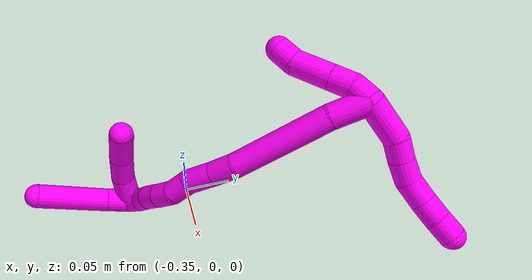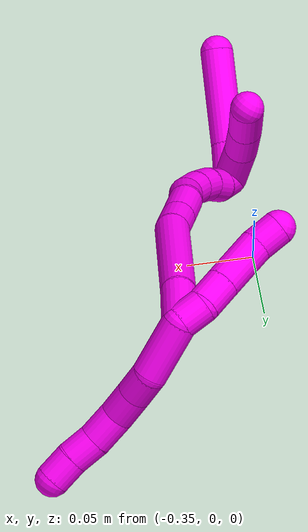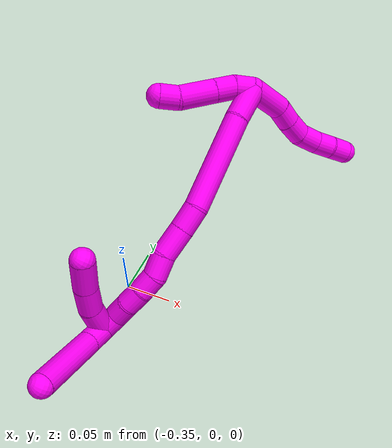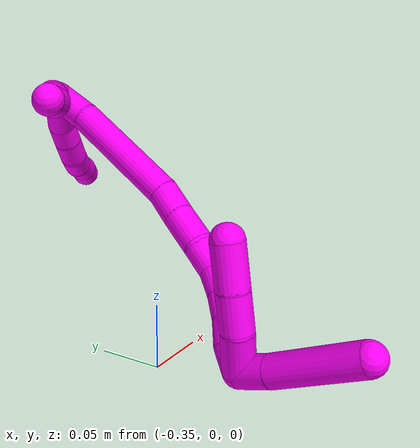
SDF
<sdf version="1.7">
 <world name="default">
  <model name="10">
   <static>0</static>
   <link name="10">
    <collision name="collision-cylinder-e_1_2_8">
     <pose>0.00173 -2.8e-05 0.021442 0.001328 0.080504 5.3e-05</pose>
     <geometry><cylinder><radius>0.0125</radius><length>0.043023</length></cylinder></geometry>
     <surface>
      <friction><ode><mu>1.16</mu><mu2>1.16</mu2><slip1>0</slip1><slip2>0</slip2></ode></friction>
      <contact><ode><kp>1e+06</kp><kd>1</kd><max_vel>0</max_vel><min_depth>0.001</min_depth></ode></contact>
     </surface>
    </collision>
    <visual name="visual-cylinder-e_1_2_8">
     <pose>0.00173 -2.8e-05 0.021442 0.001328 0.080504 5.3e-05</pose>
     <geometry><cylinder><radius>0.0125</radius><length>0.043023</length></cylinder></geometry>
     <material><ambient>1 0 0.964706 1</ambient></material>
    </visual>
    <collision name="collision-cylinder-e_2_8_9">
     <pose>0.001313 -0.001671 0.052897 0.159787 -0.208602 -0.016762</pose>
     <geometry><cylinder><radius>0.0125</radius><length>0.020735</length></cylinder></geometry>
     <surface>
      <friction><ode><mu>1.16</mu><mu2>1.16</mu2><slip1>0</slip1><slip2>0</slip2></ode></friction>
      <contact><ode><kp>1e+06</kp><kd>1</kd><max_vel>0</max_vel><min_depth>0.001</min_depth></ode></contact>
     </surface>
    </collision>
    <visual name="visual-cylinder-e_2_8_9">
     <pose>0.001313 -0.001671 0.052897 0.159787 -0.208602 -0.016762</pose>
     <geometry><cylinder><radius>0.0125</radius><length>0.020735</length></cylinder></geometry>
     <material><ambient>1 0 0.964706 1</ambient></material>
    </visual>
    <collision name="collision-cylinder-e_3_9_10">
     <pose>-0.002677 -0.004153 0.073836 0.079337 -0.166555 -0.006626</pose>
     <geometry><cylinder><radius>0.0125</radius><length>0.022226</length></cylinder></geometry>
     <surface>
      <friction><ode><mu>1.16</mu><mu2>1.16</mu2><slip1>0</slip1><slip2>0</slip2></ode></friction>
      <contact><ode><kp>1e+06</kp><kd>1</kd><max_vel>0</max_vel><min_depth>0.001</min_depth></ode></contact>
     </surface>
    </collision>
    <visual name="visual-cylinder-e_3_9_10">
     <pose>-0.002677 -0.004153 0.073836 0.079337 -0.166555 -0.006626</pose>
     <geometry><cylinder><radius>0.0125</radius><length>0.022226</length></cylinder></geometry>
     <material><ambient>1 0 0.964706 1</ambient></material>
    </visual>
    <collision name="collision-cylinder-e_4_10_11">
     <pose>-0.004567 -0.00259 0.096285 -0.207925 -0.0041 0.000428</pose>
     <geometry><cylinder><radius>0.0125</radius><length>0.023558</length></cylinder></geometry>
     <surface>
      <friction><ode><mu>1.16</mu><mu2>1.16</mu2><slip1>0</slip1><slip2>0</slip2></ode></friction>
      <contact><ode><kp>1e+06</kp><kd>1</kd><max_vel>0</max_vel><min_depth>0.001</min_depth></ode></contact>
     </surface>
    </collision>
    <visual name="visual-cylinder-e_4_10_11">
     <pose>-0.004567 -0.00259 0.096285 -0.207925 -0.0041 0.000428</pose>
     <geometry><cylinder><radius>0.0125</radius><length>0.023558</length></cylinder></geometry>
     <material><ambient>1 0 0.964706 1</ambient></material>
    </visual>
    <collision name="collision-cylinder-e_5_11_12">
     <pose>-0.005076 0.003801 0.117157 -0.4007 -0.045321 0.009205</pose>
     <geometry><cylinder><radius>0.0125</radius><length>0.020323</length></cylinder></geometry>
     <surface>
      <friction><ode><mu>1.16</mu><mu2>1.16</mu2><slip1>0</slip1><slip2>0</slip2></ode></friction>
      <contact><ode><kp>1e+06</kp><kd>1</kd><max_vel>0</max_vel><min_depth>0.001</min_depth></ode></contact>
     </surface>
    </collision>
    <visual name="visual-cylinder-e_5_11_12">
     <pose>-0.005076 0.003801 0.117157 -0.4007 -0.045321 0.009205</pose>
     <geometry><cylinder><radius>0.0125</radius><length>0.020323</length></cylinder></geometry>
     <material><ambient>1 0 0.964706 1</ambient></material>
    </visual>
    <collision name="collision-cylinder-e_6_12_6">
     <pose>-0.00499 0.010711 0.136114 -0.297927 0.054339 -0.008157</pose>
     <geometry><cylinder><radius>0.0125</radius><length>0.020135</length></cylinder></geometry>
     <surface>
      <friction><ode><mu>1.16</mu><mu2>1.16</mu2><slip1>0</slip1><slip2>0</slip2></ode></friction>
      <contact><ode><kp>1e+06</kp><kd>1</kd><max_vel>0</max_vel><min_depth>0.001</min_depth></ode></contact>
     </surface>
    </collision>
    <visual name="visual-cylinder-e_6_12_6">
     <pose>-0.00499 0.010711 0.136114 -0.297927 0.054339 -0.008157</pose>
     <geometry><cylinder><radius>0.0125</radius><length>0.020135</length></cylinder></geometry>
     <material><ambient>1 0 0.964706 1</ambient></material>
    </visual>
    <collision name="collision-cylinder-e_1_2_13">
     <pose>-0.000485 -0.005623 -0.008289 2.54559 -0.048387 -0.157243</pose>
     <geometry><cylinder><radius>0.0125</radius><length>0.020056</length></cylinder></geometry>
     <surface>
      <friction><ode><mu>1.16</mu><mu2>1.16</mu2><slip1>0</slip1><slip2>0</slip2></ode></friction>
      <contact><ode><kp>1e+06</kp><kd>1</kd><max_vel>0</max_vel><min_depth>0.001</min_depth></ode></contact>
     </surface>
    </collision>
    <visual name="visual-cylinder-e_1_2_13">
     <pose>-0.000485 -0.005623 -0.008289 2.54559 -0.048387 -0.157243</pose>
     <geometry><cylinder><radius>0.0125</radius><length>0.020056</length></cylinder></geometry>
     <material><ambient>1 0 0.964706 1</ambient></material>
    </visual>
    <collision name="collision-cylinder-e_2_13_14">
     <pose>-0.004805 -0.017761 -0.024379 2.44569 -0.360791 -0.931813</pose>
     <geometry><cylinder><radius>0.0125</radius><length>0.021726</length></cylinder></geometry>
     <surface>
      <friction><ode><mu>1.16</mu><mu2>1.16</mu2><slip1>0</slip1><slip2>0</slip2></ode></friction>
      <contact><ode><kp>1e+06</kp><kd>1</kd><max_vel>0</max_vel><min_depth>0.001</min_depth></ode></contact>
     </surface>
    </collision>
    <visual name="visual-cylinder-e_2_13_14">
     <pose>-0.004805 -0.017761 -0.024379 2.44569 -0.360791 -0.931813</pose>
     <geometry><cylinder><radius>0.0125</radius><length>0.021726</length></cylinder></geometry>
     <material><ambient>1 0 0.964706 1</ambient></material>
    </visual>
    <collision name="collision-cylinder-e_3_14_15">
     <pose>-0.015336 -0.035791 -0.045815 2.4403 -0.358977 -0.920991</pose>
     <geometry><cylinder><radius>0.0125</radius><length>0.038123</length></cylinder></geometry>
     <surface>
      <friction><ode><mu>1.16</mu><mu2>1.16</mu2><slip1>0</slip1><slip2>0</slip2></ode></friction>
      <contact><ode><kp>1e+06</kp><kd>1</kd><max_vel>0</max_vel><min_depth>0.001</min_depth></ode></contact>
     </surface>
    </collision>
    <visual name="visual-cylinder-e_3_14_15">
     <pose>-0.015336 -0.035791 -0.045815 2.4403 -0.358977 -0.920991</pose>
     <geometry><cylinder><radius>0.0125</radius><length>0.038123</length></cylinder></geometry>
     <material><ambient>1 0 0.964706 1</ambient></material>
    </visual>
    <collision name="collision-cylinder-e_4_15_5">
     <pose>-0.022812 -0.052742 -0.067863 2.56798 -0.077627 -0.261827</pose>
     <geometry><cylinder><radius>0.0125</radius><length>0.020094</length></cylinder></geometry>
     <surface>
      <friction><ode><mu>1.16</mu><mu2>1.16</mu2><slip1>0</slip1><slip2>0</slip2></ode></friction>
      <contact><ode><kp>1e+06</kp><kd>1</kd><max_vel>0</max_vel><min_depth>0.001</min_depth></ode></contact>
     </surface>
    </collision>
    <visual name="visual-cylinder-e_4_15_5">
     <pose>-0.022812 -0.052742 -0.067863 2.56798 -0.077627 -0.261827</pose>
     <geometry><cylinder><radius>0.0125</radius><length>0.020094</length></cylinder></geometry>
     <material><ambient>1 0 0.964706 1</ambient></material>
    </visual>
    <collision name="collision-cylinder-e_1_2_16">
     <pose>-0.016137 -0.009233 -0.002658 1.85106 -1.03378 -1.29357</pose>
     <geometry><cylinder><radius>0.0125</radius><length>0.037562</length></cylinder></geometry>
     <surface>
      <friction><ode><mu>1.16</mu><mu2>1.16</mu2><slip1>0</slip1><slip2>0</slip2></ode></friction>
      <contact><ode><kp>1e+06</kp><kd>1</kd><max_vel>0</max_vel><min_depth>0.001</min_depth></ode></contact>
     </surface>
    </collision>
    <visual name="visual-cylinder-e_1_2_16">
     <pose>-0.016137 -0.009233 -0.002658 1.85106 -1.03378 -1.29357</pose>
     <geometry><cylinder><radius>0.0125</radius><length>0.037562</length></cylinder></geometry>
     <material><ambient>1 0 0.964706 1</ambient></material>
    </visual>
    <collision name="collision-cylinder-e_2_16_17">
     <pose>-0.074413 -0.045542 -0.006377 1.61 -0.999324 -1.03265</pose>
     <geometry><cylinder><radius>0.0125</radius><length>0.100198</length></cylinder></geometry>
     <surface>
      <friction><ode><mu>1.16</mu><mu2>1.16</mu2><slip1>0</slip1><slip2>0</slip2></ode></friction>
      <contact><ode><kp>1e+06</kp><kd>1</kd><max_vel>0</max_vel><min_depth>0.001</min_depth></ode></contact>
     </surface>
    </collision>
    <visual name="visual-cylinder-e_2_16_17">
     <pose>-0.074413 -0.045542 -0.006377 1.61 -0.999324 -1.03265</pose>
     <geometry><cylinder><radius>0.0125</radius><length>0.100198</length></cylinder></geometry>
     <material><ambient>1 0 0.964706 1</ambient></material>
    </visual>
    <collision name="collision-cylinder-e_3_17_18">
     <pose>-0.125554 -0.081816 -0.008085 1.64089 -0.773441 -0.823675</pose>
     <geometry><cylinder><radius>0.0125</radius><length>0.025773</length></cylinder></geometry>
     <surface>
      <friction><ode><mu>1.16</mu><mu2>1.16</mu2><slip1>0</slip1><slip2>0</slip2></ode></friction>
      <contact><ode><kp>1e+06</kp><kd>1</kd><max_vel>0</max_vel><min_depth>0.001</min_depth></ode></contact>
     </surface>
    </collision>
    <visual name="visual-cylinder-e_3_17_18">
     <pose>-0.125554 -0.081816 -0.008085 1.64089 -0.773441 -0.823675</pose>
     <geometry><cylinder><radius>0.0125</radius><length>0.025773</length></cylinder></geometry>
     <material><ambient>1 0 0.964706 1</ambient></material>
    </visual>
    <collision name="collision-cylinder-e_4_18_19">
     <pose>-0.145499 -0.101871 -0.010362 1.7199 -0.78373 -0.894954</pose>
     <geometry><cylinder><radius>0.0125</radius><length>0.031001</length></cylinder></geometry>
     <surface>
      <friction><ode><mu>1.16</mu><mu2>1.16</mu2><slip1>0</slip1><slip2>0</slip2></ode></friction>
      <contact><ode><kp>1e+06</kp><kd>1</kd><max_vel>0</max_vel><min_depth>0.001</min_depth></ode></contact>
     </surface>
    </collision>
    <visual name="visual-cylinder-e_4_18_19">
     <pose>-0.145499 -0.101871 -0.010362 1.7199 -0.78373 -0.894954</pose>
     <geometry><cylinder><radius>0.0125</radius><length>0.031001</length></cylinder></geometry>
     <material><ambient>1 0 0.964706 1</ambient></material>
    </visual>
    <collision name="collision-cylinder-e_5_19_20">
     <pose>-0.164972 -0.120408 -0.010492 1.37787 -0.828469 -0.694813</pose>
     <geometry><cylinder><radius>0.0125</radius><length>0.023153</length></cylinder></geometry>
     <surface>
      <friction><ode><mu>1.16</mu><mu2>1.16</mu2><slip1>0</slip1><slip2>0</slip2></ode></friction>
      <contact><ode><kp>1e+06</kp><kd>1</kd><max_vel>0</max_vel><min_depth>0.001</min_depth></ode></contact>
     </surface>
    </collision>
    <visual name="visual-cylinder-e_5_19_20">
     <pose>-0.164972 -0.120408 -0.010492 1.37787 -0.828469 -0.694813</pose>
     <geometry><cylinder><radius>0.0125</radius><length>0.023153</length></cylinder></geometry>
     <material><ambient>1 0 0.964706 1</ambient></material>
    </visual>
    <collision name="collision-cylinder-e_6_20_21">
     <pose>-0.179151 -0.137232 -0.009771 1.6558 -0.551828 -0.598084</pose>
     <geometry><cylinder><radius>0.0125</radius><length>0.021551</length></cylinder></geometry>
     <surface>
      <friction><ode><mu>1.16</mu><mu2>1.16</mu2><slip1>0</slip1><slip2>0</slip2></ode></friction>
      <contact><ode><kp>1e+06</kp><kd>1</kd><max_vel>0</max_vel><min_depth>0.001</min_depth></ode></contact>
     </surface>
    </collision>
    <visual name="visual-cylinder-e_6_20_21">
     <pose>-0.179151 -0.137232 -0.009771 1.6558 -0.551828 -0.598084</pose>
     <geometry><cylinder><radius>0.0125</radius><length>0.021551</length></cylinder></geometry>
     <material><ambient>1 0 0.964706 1</ambient></material>
    </visual>
    <collision name="collision-cylinder-e_7_21_22">
     <pose>-0.189035 -0.155538 -0.011034 1.62367 -0.432361 -0.455066</pose>
     <geometry><cylinder><radius>0.0125</radius><length>0.020211</length></cylinder></geometry>
     <surface>
      <friction><ode><mu>1.16</mu><mu2>1.16</mu2><slip1>0</slip1><slip2>0</slip2></ode></friction>
      <contact><ode><kp>1e+06</kp><kd>1</kd><max_vel>0</max_vel><min_depth>0.001</min_depth></ode></contact>
     </surface>
    </collision>
    <visual name="visual-cylinder-e_7_21_22">
     <pose>-0.189035 -0.155538 -0.011034 1.62367 -0.432361 -0.455066</pose>
     <geometry><cylinder><radius>0.0125</radius><length>0.020211</length></cylinder></geometry>
     <material><ambient>1 0 0.964706 1</ambient></material>
    </visual>
    <collision name="collision-cylinder-e_8_22_23">
     <pose>-0.196286 -0.174298 -0.010647 1.48015 -0.303331 -0.277361</pose>
     <geometry><cylinder><radius>0.0125</radius><length>0.020196</length></cylinder></geometry>
     <surface>
      <friction><ode><mu>1.16</mu><mu2>1.16</mu2><slip1>0</slip1><slip2>0</slip2></ode></friction>
      <contact><ode><kp>1e+06</kp><kd>1</kd><max_vel>0</max_vel><min_depth>0.001</min_depth></ode></contact>
     </surface>
    </collision>
    <visual name="visual-cylinder-e_8_22_23">
     <pose>-0.196286 -0.174298 -0.010647 1.48015 -0.303331 -0.277361</pose>
     <geometry><cylinder><radius>0.0125</radius><length>0.020196</length></cylinder></geometry>
     <material><ambient>1 0 0.964706 1</ambient></material>
    </visual>
    <collision name="collision-cylinder-e_9_23_1">
     <pose>-0.204406 -0.192582 -0.011212 1.73481 -0.525362 -0.61406</pose>
     <geometry><cylinder><radius>0.0125</radius><length>0.020355</length></cylinder></geometry>
     <surface>
      <friction><ode><mu>1.16</mu><mu2>1.16</mu2><slip1>0</slip1><slip2>0</slip2></ode></friction>
      <contact><ode><kp>1e+06</kp><kd>1</kd><max_vel>0</max_vel><min_depth>0.001</min_depth></ode></contact>
     </surface>
    </collision>
    <visual name="visual-cylinder-e_9_23_1">
     <pose>-0.204406 -0.192582 -0.011212 1.73481 -0.525362 -0.61406</pose>
     <geometry><cylinder><radius>0.0125</radius><length>0.020355</length></cylinder></geometry>
     <material><ambient>1 0 0.964706 1</ambient></material>
    </visual>
    <collision name="collision-cylinder-e_1_1_24">
     <pose>-0.219749 -0.20103 -0.021116 -3.11329 -0.879692 3.08146</pose>
     <geometry><cylinder><radius>0.0125</radius><length>0.026574</length></cylinder></geometry>
     <surface>
      <friction><ode><mu>1.16</mu><mu2>1.16</mu2><slip1>0</slip1><slip2>0</slip2></ode></friction>
      <contact><ode><kp>1e+06</kp><kd>1</kd><max_vel>0</max_vel><min_depth>0.001</min_depth></ode></contact>
     </surface>
    </collision>
    <visual name="visual-cylinder-e_1_1_24">
     <pose>-0.219749 -0.20103 -0.021116 -3.11329 -0.879692 3.08146</pose>
     <geometry><cylinder><radius>0.0125</radius><length>0.026574</length></cylinder></geometry>
     <material><ambient>1 0 0.964706 1</ambient></material>
    </visual>
    <collision name="collision-cylinder-e_2_24_4">
     <pose>-0.257356 -0.196635 -0.053695 -2.97095 -0.841283 2.76377</pose>
     <geometry><cylinder><radius>0.0125</radius><length>0.073426</length></cylinder></geometry>
     <surface>
      <friction><ode><mu>1.16</mu><mu2>1.16</mu2><slip1>0</slip1><slip2>0</slip2></ode></friction>
      <contact><ode><kp>1e+06</kp><kd>1</kd><max_vel>0</max_vel><min_depth>0.001</min_depth></ode></contact>
     </surface>
    </collision>
    <visual name="visual-cylinder-e_2_24_4">
     <pose>-0.257356 -0.196635 -0.053695 -2.97095 -0.841283 2.76377</pose>
     <geometry><cylinder><radius>0.0125</radius><length>0.073426</length></cylinder></geometry>
     <material><ambient>1 0 0.964706 1</ambient></material>
    </visual>
    <collision name="collision-cylinder-e_1_1_25">
     <pose>-0.205559 -0.192574 -0.027627 -2.6156 0.22436 -0.79257</pose>
     <geometry><cylinder><radius>0.0125</radius><length>0.035525</length></cylinder></geometry>
     <surface>
      <friction><ode><mu>1.16</mu><mu2>1.16</mu2><slip1>0</slip1><slip2>0</slip2></ode></friction>
      <contact><ode><kp>1e+06</kp><kd>1</kd><max_vel>0</max_vel><min_depth>0.001</min_depth></ode></contact>
     </surface>
    </collision>
    <visual name="visual-cylinder-e_1_1_25">
     <pose>-0.205559 -0.192574 -0.027627 -2.6156 0.22436 -0.79257</pose>
     <geometry><cylinder><radius>0.0125</radius><length>0.035525</length></cylinder></geometry>
     <material><ambient>1 0 0.964706 1</ambient></material>
    </visual>
    <collision name="collision-cylinder-e_2_25_26">
     <pose>-0.19695 -0.174322 -0.053096 -2.40275 0.317047 -0.783121</pose>
     <geometry><cylinder><radius>0.0125</radius><length>0.029876</length></cylinder></geometry>
     <surface>
      <friction><ode><mu>1.16</mu><mu2>1.16</mu2><slip1>0</slip1><slip2>0</slip2></ode></friction>
      <contact><ode><kp>1e+06</kp><kd>1</kd><max_vel>0</max_vel><min_depth>0.001</min_depth></ode></contact>
     </surface>
    </collision>
    <visual name="visual-cylinder-e_2_25_26">
     <pose>-0.19695 -0.174322 -0.053096 -2.40275 0.317047 -0.783121</pose>
     <geometry><cylinder><radius>0.0125</radius><length>0.029876</length></cylinder></geometry>
     <material><ambient>1 0 0.964706 1</ambient></material>
    </visual>
    <collision name="collision-cylinder-e_3_26_3">
     <pose>-0.186703 -0.152746 -0.074707 -2.31738 0.328978 -0.725797</pose>
     <geometry><cylinder><radius>0.0125</radius><length>0.034599</length></cylinder></geometry>
     <surface>
      <friction><ode><mu>1.16</mu><mu2>1.16</mu2><slip1>0</slip1><slip2>0</slip2></ode></friction>
      <contact><ode><kp>1e+06</kp><kd>1</kd><max_vel>0</max_vel><min_depth>0.001</min_depth></ode></contact>
     </surface>
    </collision>
    <visual name="visual-cylinder-e_3_26_3">
     <pose>-0.186703 -0.152746 -0.074707 -2.31738 0.328978 -0.725797</pose>
     <geometry><cylinder><radius>0.0125</radius><length>0.034599</length></cylinder></geometry>
     <material><ambient>1 0 0.964706 1</ambient></material>
    </visual>
    <collision name="collision-sphere-3">
     <pose>-0.181114 -0.140729 -0.085825 0 -0 0</pose>
     <geometry><sphere><radius>0.0125</radius></sphere></geometry>
     <surface>
      <friction><ode><mu>1.16</mu><mu2>1.16</mu2><slip1>0</slip1><slip2>0</slip2></ode></friction>
      <contact><ode><kp>1e+06</kp><kd>1</kd><max_vel>0</max_vel><min_depth>0.001</min_depth></ode></contact>
     </surface>
    </collision>
    <visual name="visual-sphere-3">
     <pose>-0.181114 -0.140729 -0.085825 0 -0 0</pose>
     <geometry><sphere><radius>0.0125</radius></sphere></geometry>
     <material><ambient>1 0 0.964706 1</ambient></material>
    </visual>
    <collision name="collision-sphere-26">
     <pose>-0.192292 -0.164763 -0.063588 0 -0 0</pose>
     <geometry><sphere><radius>0.0125</radius></sphere></geometry>
     <surface>
      <friction><ode><mu>1.16</mu><mu2>1.16</mu2><slip1>0</slip1><slip2>0</slip2></ode></friction>
      <contact><ode><kp>1e+06</kp><kd>1</kd><max_vel>0</max_vel><min_depth>0.001</min_depth></ode></contact>
     </surface>
    </collision>
    <visual name="visual-sphere-26">
     <pose>-0.192292 -0.164763 -0.063588 0 -0 0</pose>
     <geometry><sphere><radius>0.0125</radius></sphere></geometry>
     <material><ambient>1 0 0.964706 1</ambient></material>
    </visual>
    <collision name="collision-sphere-25">
     <pose>-0.201607 -0.18388 -0.042603 0 -0 0</pose>
     <geometry><sphere><radius>0.0125</radius></sphere></geometry>
     <surface>
      <friction><ode><mu>1.16</mu><mu2>1.16</mu2><slip1>0</slip1><slip2>0</slip2></ode></friction>
      <contact><ode><kp>1e+06</kp><kd>1</kd><max_vel>0</max_vel><min_depth>0.001</min_depth></ode></contact>
     </surface>
    </collision>
    <visual name="visual-sphere-25">
     <pose>-0.201607 -0.18388 -0.042603 0 -0 0</pose>
     <geometry><sphere><radius>0.0125</radius></sphere></geometry>
     <material><ambient>1 0 0.964706 1</ambient></material>
    </visual>
    <collision name="collision-sphere-4">
     <pose>-0.284726 -0.192479 -0.077809 0 -0 0</pose>
     <geometry><sphere><radius>0.0125</radius></sphere></geometry>
     <surface>
      <friction><ode><mu>1.16</mu><mu2>1.16</mu2><slip1>0</slip1><slip2>0</slip2></ode></friction>
      <contact><ode><kp>1e+06</kp><kd>1</kd><max_vel>0</max_vel><min_depth>0.001</min_depth></ode></contact>
     </surface>
    </collision>
    <visual name="visual-sphere-4">
     <pose>-0.284726 -0.192479 -0.077809 0 -0 0</pose>
     <geometry><sphere><radius>0.0125</radius></sphere></geometry>
     <material><ambient>1 0 0.964706 1</ambient></material>
    </visual>
    <collision name="collision-sphere-24">
     <pose>-0.229987 -0.20079 -0.029581 0 -0 0</pose>
     <geometry><sphere><radius>0.0125</radius></sphere></geometry>
     <surface>
      <friction><ode><mu>1.16</mu><mu2>1.16</mu2><slip1>0</slip1><slip2>0</slip2></ode></friction>
      <contact><ode><kp>1e+06</kp><kd>1</kd><max_vel>0</max_vel><min_depth>0.001</min_depth></ode></contact>
     </surface>
    </collision>
    <visual name="visual-sphere-24">
     <pose>-0.229987 -0.20079 -0.029581 0 -0 0</pose>
     <geometry><sphere><radius>0.0125</radius></sphere></geometry>
     <material><ambient>1 0 0.964706 1</ambient></material>
    </visual>
    <collision name="collision-sphere-1">
     <pose>-0.20951 -0.201269 -0.01265 0 -0 0</pose>
     <geometry><sphere><radius>0.0125</radius></sphere></geometry>
     <surface>
      <friction><ode><mu>1.16</mu><mu2>1.16</mu2><slip1>0</slip1><slip2>0</slip2></ode></friction>
      <contact><ode><kp>1e+06</kp><kd>1</kd><max_vel>0</max_vel><min_depth>0.001</min_depth></ode></contact>
     </surface>
    </collision>
    <visual name="visual-sphere-1">
     <pose>-0.20951 -0.201269 -0.01265 0 -0 0</pose>
     <geometry><sphere><radius>0.0125</radius></sphere></geometry>
     <material><ambient>1 0 0.964706 1</ambient></material>
    </visual>
    <collision name="collision-sphere-23">
     <pose>-0.199302 -0.183896 -0.009775 0 -0 0</pose>
     <geometry><sphere><radius>0.0125</radius></sphere></geometry>
     <surface>
      <friction><ode><mu>1.16</mu><mu2>1.16</mu2><slip1>0</slip1><slip2>0</slip2></ode></friction>
      <contact><ode><kp>1e+06</kp><kd>1</kd><max_vel>0</max_vel><min_depth>0.001</min_depth></ode></contact>
     </surface>
    </collision>
    <visual name="visual-sphere-23">
     <pose>-0.199302 -0.183896 -0.009775 0 -0 0</pose>
     <geometry><sphere><radius>0.0125</radius></sphere></geometry>
     <material><ambient>1 0 0.964706 1</ambient></material>
    </visual>
    <collision name="collision-sphere-22">
     <pose>-0.193269 -0.164701 -0.011519 0 -0 0</pose>
     <geometry><sphere><radius>0.0125</radius></sphere></geometry>
     <surface>
      <friction><ode><mu>1.16</mu><mu2>1.16</mu2><slip1>0</slip1><slip2>0</slip2></ode></friction>
      <contact><ode><kp>1e+06</kp><kd>1</kd><max_vel>0</max_vel><min_depth>0.001</min_depth></ode></contact>
     </surface>
    </collision>
    <visual name="visual-sphere-22">
     <pose>-0.193269 -0.164701 -0.011519 0 -0 0</pose>
     <geometry><sphere><radius>0.0125</radius></sphere></geometry>
     <material><ambient>1 0 0.964706 1</ambient></material>
    </visual>
    <collision name="collision-sphere-21">
     <pose>-0.1848 -0.146375 -0.01055 0 -0 0</pose>
     <geometry><sphere><radius>0.0125</radius></sphere></geometry>
     <surface>
      <friction><ode><mu>1.16</mu><mu2>1.16</mu2><slip1>0</slip1><slip2>0</slip2></ode></friction>
      <contact><ode><kp>1e+06</kp><kd>1</kd><max_vel>0</max_vel><min_depth>0.001</min_depth></ode></contact>
     </surface>
    </collision>
    <visual name="visual-sphere-21">
     <pose>-0.1848 -0.146375 -0.01055 0 -0 0</pose>
     <geometry><sphere><radius>0.0125</radius></sphere></geometry>
     <material><ambient>1 0 0.964706 1</ambient></material>
    </visual>
    <collision name="collision-sphere-12">
     <pose>-0.005536 0.00776 0.126504 0 -0 0</pose>
     <geometry><sphere><radius>0.0125</radius></sphere></geometry>
     <surface>
      <friction><ode><mu>1.16</mu><mu2>1.16</mu2><slip1>0</slip1><slip2>0</slip2></ode></friction>
      <contact><ode><kp>1e+06</kp><kd>1</kd><max_vel>0</max_vel><min_depth>0.001</min_depth></ode></contact>
     </surface>
    </collision>
    <visual name="visual-sphere-12">
     <pose>-0.005536 0.00776 0.126504 0 -0 0</pose>
     <geometry><sphere><radius>0.0125</radius></sphere></geometry>
     <material><ambient>1 0 0.964706 1</ambient></material>
    </visual>
    <collision name="collision-sphere-11">
     <pose>-0.004616 -0.000159 0.10781 0 -0 0</pose>
     <geometry><sphere><radius>0.0125</radius></sphere></geometry>
     <surface>
      <friction><ode><mu>1.16</mu><mu2>1.16</mu2><slip1>0</slip1><slip2>0</slip2></ode></friction>
      <contact><ode><kp>1e+06</kp><kd>1</kd><max_vel>0</max_vel><min_depth>0.001</min_depth></ode></contact>
     </surface>
    </collision>
    <visual name="visual-sphere-11">
     <pose>-0.004616 -0.000159 0.10781 0 -0 0</pose>
     <geometry><sphere><radius>0.0125</radius></sphere></geometry>
     <material><ambient>1 0 0.964706 1</ambient></material>
    </visual>
    <collision name="collision-sphere-10">
     <pose>-0.004519 -0.005022 0.08476 0 -0 0</pose>
     <geometry><sphere><radius>0.0125</radius></sphere></geometry>
     <surface>
      <friction><ode><mu>1.16</mu><mu2>1.16</mu2><slip1>0</slip1><slip2>0</slip2></ode></friction>
      <contact><ode><kp>1e+06</kp><kd>1</kd><max_vel>0</max_vel><min_depth>0.001</min_depth></ode></contact>
     </surface>
    </collision>
    <visual name="visual-sphere-10">
     <pose>-0.004519 -0.005022 0.08476 0 -0 0</pose>
     <geometry><sphere><radius>0.0125</radius></sphere></geometry>
     <material><ambient>1 0 0.964706 1</ambient></material>
    </visual>
    <collision name="collision-sphere-9">
     <pose>-0.000834 -0.003285 0.062911 0 -0 0</pose>
     <geometry><sphere><radius>0.0125</radius></sphere></geometry>
     <surface>
      <friction><ode><mu>1.16</mu><mu2>1.16</mu2><slip1>0</slip1><slip2>0</slip2></ode></friction>
      <contact><ode><kp>1e+06</kp><kd>1</kd><max_vel>0</max_vel><min_depth>0.001</min_depth></ode></contact>
     </surface>
    </collision>
    <visual name="visual-sphere-9">
     <pose>-0.000834 -0.003285 0.062911 0 -0 0</pose>
     <geometry><sphere><radius>0.0125</radius></sphere></geometry>
     <material><ambient>1 0 0.964706 1</ambient></material>
    </visual>
    <collision name="collision-sphere-2">
     <geometry><sphere><radius>0.0125</radius></sphere></geometry>
     <surface>
      <friction><ode><mu>1.16</mu><mu2>1.16</mu2><slip1>0</slip1><slip2>0</slip2></ode></friction>
      <contact><ode><kp>1e+06</kp><kd>1</kd><max_vel>0</max_vel><min_depth>0.001</min_depth></ode></contact>
     </surface>
    </collision>
    <visual name="visual-sphere-2">
     <geometry><sphere><radius>0.0125</radius></sphere></geometry>
     <material><ambient>1 0 0.964706 1</ambient></material>
    </visual>
    <collision name="collision-sphere-19">
     <pose>-0.156441 -0.112728 -0.011992 0 -0 0</pose>
     <geometry><sphere><radius>0.0125</radius></sphere></geometry>
     <surface>
      <friction><ode><mu>1.16</mu><mu2>1.16</mu2><slip1>0</slip1><slip2>0</slip2></ode></friction>
      <contact><ode><kp>1e+06</kp><kd>1</kd><max_vel>0</max_vel><min_depth>0.001</min_depth></ode></contact>
     </surface>
    </collision>
    <visual name="visual-sphere-19">
     <pose>-0.156441 -0.112728 -0.011992 0 -0 0</pose>
     <geometry><sphere><radius>0.0125</radius></sphere></geometry>
     <material><ambient>1 0 0.964706 1</ambient></material>
    </visual>
    <collision name="collision-sphere-8">
     <pose>0.00346 -5.7e-05 0.042884 0 -0 0</pose>
     <geometry><sphere><radius>0.0125</radius></sphere></geometry>
     <surface>
      <friction><ode><mu>1.16</mu><mu2>1.16</mu2><slip1>0</slip1><slip2>0</slip2></ode></friction>
      <contact><ode><kp>1e+06</kp><kd>1</kd><max_vel>0</max_vel><min_depth>0.001</min_depth></ode></contact>
     </surface>
    </collision>
    <visual name="visual-sphere-8">
     <pose>0.00346 -5.7e-05 0.042884 0 -0 0</pose>
     <geometry><sphere><radius>0.0125</radius></sphere></geometry>
     <material><ambient>1 0 0.964706 1</ambient></material>
    </visual>
    <collision name="collision-sphere-6">
     <pose>-0.004443 0.013662 0.145724 0 -0 0</pose>
     <geometry><sphere><radius>0.0125</radius></sphere></geometry>
     <surface>
      <friction><ode><mu>1.16</mu><mu2>1.16</mu2><slip1>0</slip1><slip2>0</slip2></ode></friction>
      <contact><ode><kp>1e+06</kp><kd>1</kd><max_vel>0</max_vel><min_depth>0.001</min_depth></ode></contact>
     </surface>
    </collision>
    <visual name="visual-sphere-6">
     <pose>-0.004443 0.013662 0.145724 0 -0 0</pose>
     <geometry><sphere><radius>0.0125</radius></sphere></geometry>
     <material><ambient>1 0 0.964706 1</ambient></material>
    </visual>
    <collision name="collision-sphere-13">
     <pose>-0.00097 -0.011245 -0.016579 0 -0 0</pose>
     <geometry><sphere><radius>0.0125</radius></sphere></geometry>
     <surface>
      <friction><ode><mu>1.16</mu><mu2>1.16</mu2><slip1>0</slip1><slip2>0</slip2></ode></friction>
      <contact><ode><kp>1e+06</kp><kd>1</kd><max_vel>0</max_vel><min_depth>0.001</min_depth></ode></contact>
     </surface>
    </collision>
    <visual name="visual-sphere-13">
     <pose>-0.00097 -0.011245 -0.016579 0 -0 0</pose>
     <geometry><sphere><radius>0.0125</radius></sphere></geometry>
     <material><ambient>1 0 0.964706 1</ambient></material>
    </visual>
    <collision name="collision-sphere-14">
     <pose>-0.00864 -0.024277 -0.03218 0 -0 0</pose>
     <geometry><sphere><radius>0.0125</radius></sphere></geometry>
     <surface>
      <friction><ode><mu>1.16</mu><mu2>1.16</mu2><slip1>0</slip1><slip2>0</slip2></ode></friction>
      <contact><ode><kp>1e+06</kp><kd>1</kd><max_vel>0</max_vel><min_depth>0.001</min_depth></ode></contact>
     </surface>
    </collision>
    <visual name="visual-sphere-14">
     <pose>-0.00864 -0.024277 -0.03218 0 -0 0</pose>
     <geometry><sphere><radius>0.0125</radius></sphere></geometry>
     <material><ambient>1 0 0.964706 1</ambient></material>
    </visual>
    <collision name="collision-sphere-15">
     <pose>-0.022033 -0.047306 -0.05945 0 -0 0</pose>
     <geometry><sphere><radius>0.0125</radius></sphere></geometry>
     <surface>
      <friction><ode><mu>1.16</mu><mu2>1.16</mu2><slip1>0</slip1><slip2>0</slip2></ode></friction>
      <contact><ode><kp>1e+06</kp><kd>1</kd><max_vel>0</max_vel><min_depth>0.001</min_depth></ode></contact>
     </surface>
    </collision>
    <visual name="visual-sphere-15">
     <pose>-0.022033 -0.047306 -0.05945 0 -0 0</pose>
     <geometry><sphere><radius>0.0125</radius></sphere></geometry>
     <material><ambient>1 0 0.964706 1</ambient></material>
    </visual>
    <collision name="collision-sphere-5">
     <pose>-0.023591 -0.058178 -0.076277 0 -0 0</pose>
     <geometry><sphere><radius>0.0125</radius></sphere></geometry>
     <surface>
      <friction><ode><mu>1.16</mu><mu2>1.16</mu2><slip1>0</slip1><slip2>0</slip2></ode></friction>
      <contact><ode><kp>1e+06</kp><kd>1</kd><max_vel>0</max_vel><min_depth>0.001</min_depth></ode></contact>
     </surface>
    </collision>
    <visual name="visual-sphere-5">
     <pose>-0.023591 -0.058178 -0.076277 0 -0 0</pose>
     <geometry><sphere><radius>0.0125</radius></sphere></geometry>
     <material><ambient>1 0 0.964706 1</ambient></material>
    </visual>
    <collision name="collision-sphere-16">
     <pose>-0.032275 -0.018466 -0.005315 0 -0 0</pose>
     <geometry><sphere><radius>0.0125</radius></sphere></geometry>
     <surface>
      <friction><ode><mu>1.16</mu><mu2>1.16</mu2><slip1>0</slip1><slip2>0</slip2></ode></friction>
      <contact><ode><kp>1e+06</kp><kd>1</kd><max_vel>0</max_vel><min_depth>0.001</min_depth></ode></contact>
     </surface>
    </collision>
    <visual name="visual-sphere-16">
     <pose>-0.032275 -0.018466 -0.005315 0 -0 0</pose>
     <geometry><sphere><radius>0.0125</radius></sphere></geometry>
     <material><ambient>1 0 0.964706 1</ambient></material>
    </visual>
    <collision name="collision-sphere-17">
     <pose>-0.116552 -0.072619 -0.007439 0 -0 0</pose>
     <geometry><sphere><radius>0.0125</radius></sphere></geometry>
     <surface>
      <friction><ode><mu>1.16</mu><mu2>1.16</mu2><slip1>0</slip1><slip2>0</slip2></ode></friction>
      <contact><ode><kp>1e+06</kp><kd>1</kd><max_vel>0</max_vel><min_depth>0.001</min_depth></ode></contact>
     </surface>
    </collision>
    <visual name="visual-sphere-17">
     <pose>-0.116552 -0.072619 -0.007439 0 -0 0</pose>
     <geometry><sphere><radius>0.0125</radius></sphere></geometry>
     <material><ambient>1 0 0.964706 1</ambient></material>
    </visual>
    <collision name="collision-sphere-18">
     <pose>-0.134557 -0.091014 -0.008731 0 -0 0</pose>
     <geometry><sphere><radius>0.0125</radius></sphere></geometry>
     <surface>
      <friction><ode><mu>1.16</mu><mu2>1.16</mu2><slip1>0</slip1><slip2>0</slip2></ode></friction>
      <contact><ode><kp>1e+06</kp><kd>1</kd><max_vel>0</max_vel><min_depth>0.001</min_depth></ode></contact>
     </surface>
    </collision>
    <visual name="visual-sphere-18">
     <pose>-0.134557 -0.091014 -0.008731 0 -0 0</pose>
     <geometry><sphere><radius>0.0125</radius></sphere></geometry>
     <material><ambient>1 0 0.964706 1</ambient></material>
    </visual>
    <collision name="collision-sphere-20">
     <pose>-0.173503 -0.128089 -0.008991 0 -0 0</pose>
     <geometry><sphere><radius>0.0125</radius></sphere></geometry>
     <surface>
      <friction><ode><mu>1.16</mu><mu2>1.16</mu2><slip1>0</slip1><slip2>0</slip2></ode></friction>
      <contact><ode><kp>1e+06</kp><kd>1</kd><max_vel>0</max_vel><min_depth>0.001</min_depth></ode></contact>
     </surface>
    </collision>
    <visual name="visual-sphere-20">
     <pose>-0.173503 -0.128089 -0.008991 0 -0 0</pose>
     <geometry><sphere><radius>0.0125</radius></sphere></geometry>
     <material><ambient>1 0 0.964706 1</ambient></material>
    </visual>
    <inertial>
     <pose>-0.108325 -0.088586 -0.0064 0 -0 0</pose>
     <mass>0.75</mass>
     <inertia>
      <ixx>-3.6e-05</ixx>
      <ixy>0</ixy>
      <ixz>0</ixz>
      <iyy>4.4e-05</iyy>
      <iyz>0</iyz>
      <izz>0.000163</izz>
     </inertia>
    </inertial>
   </link>
   <pose>-0.268582 0.159336 0.181523 2.37428 -0.197238 1.95795</pose>
  </model>
 </world>
</sdf>
